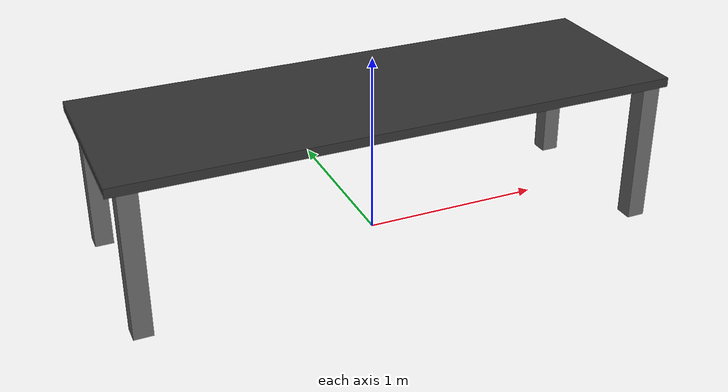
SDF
<?xml version="1.0" ?>
<sdf version="1.5">
  <model name="conveyor_belt">
    <static>true</static>
    <link name="link">
      <!-- سطح السير (القشاط) -->
      <visual name="belt_surface">
        <pose>0 0 0.8 0 0 0</pose>
        <geometry><box><size>3 1 0.05</size></box></geometry>
        <material><ambient>0.1 0.1 0.1 1</ambient><diffuse>0.2 0.2 0.2 1</diffuse></material>
      </visual>
      <collision name="belt_collision">
        <pose>0 0 0.8 0 0 0</pose>
        <geometry><box><size>3 1 0.05</size></box></geometry>
      </collision>
      <!-- الأرجل -->
      <visual name="leg_1">
        <pose>1.4 0.45 0.4 0 0 0</pose>
        <geometry><box><size>0.1 0.1 0.8</size></box></geometry>
        <material><ambient>0.4 0.4 0.4 1</ambient></material>
      </visual>
      <visual name="leg_2">
        <pose>1.4 -0.45 0.4 0 0 0</pose>
        <geometry><box><size>0.1 0.1 0.8</size></box></geometry>
        <material><ambient>0.4 0.4 0.4 1</ambient></material>
      </visual>
      <visual name="leg_3">
        <pose>-1.4 0.45 0.4 0 0 0</pose>
        <geometry><box><size>0.1 0.1 0.8</size></box></geometry>
        <material><ambient>0.4 0.4 0.4 1</ambient></material>
      </visual>
      <visual name="leg_4">
        <pose>-1.4 -0.45 0.4 0 0 0</pose>
        <geometry><box><size>0.1 0.1 0.8</size></box></geometry>
        <material><ambient>0.4 0.4 0.4 1</ambient></material>
      </visual>
    </link>
  </model>
</sdf>
